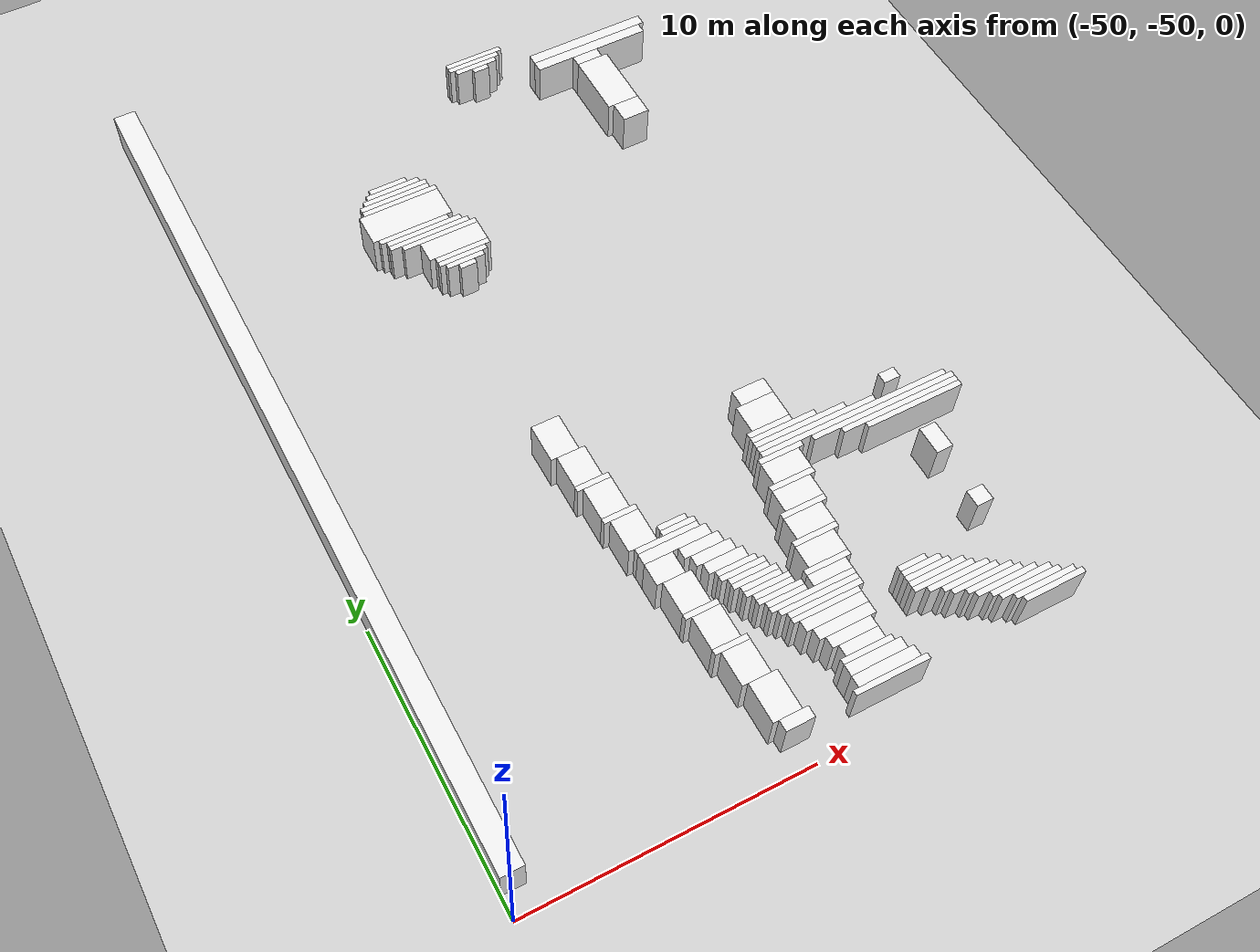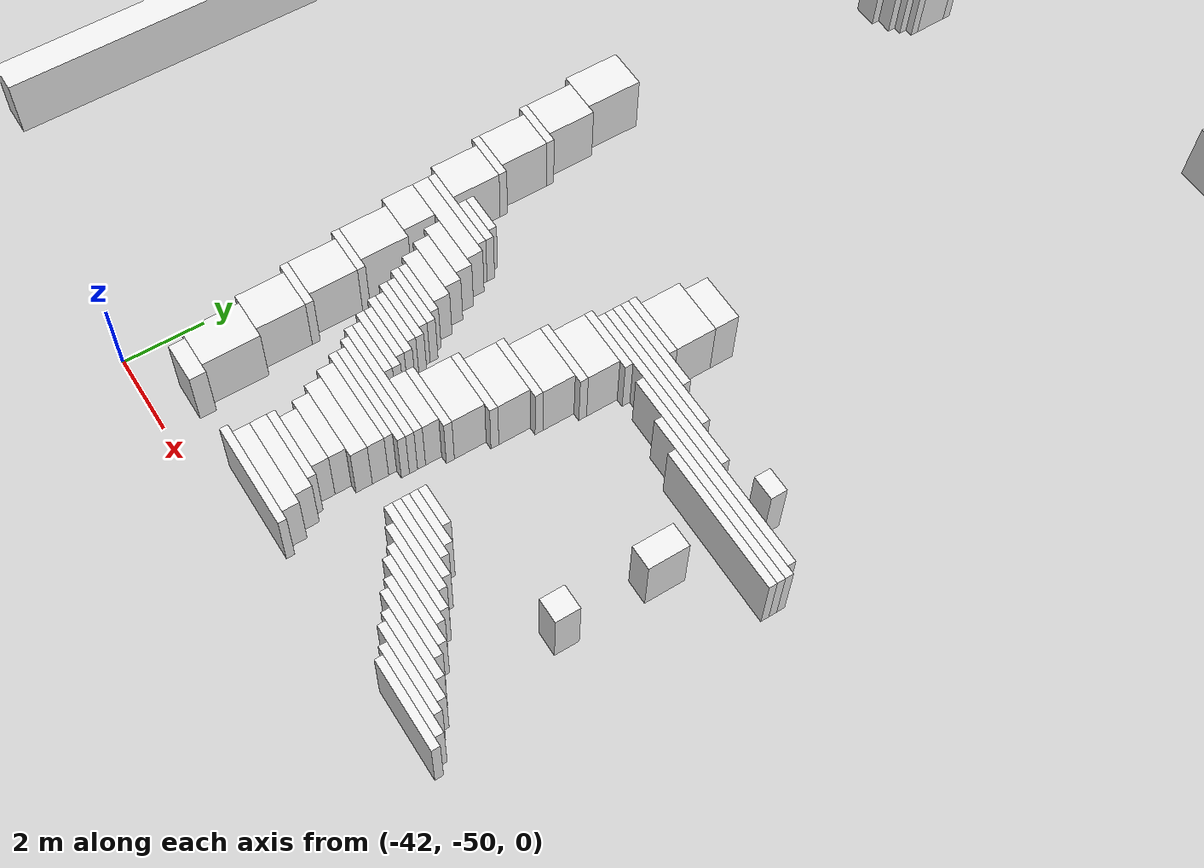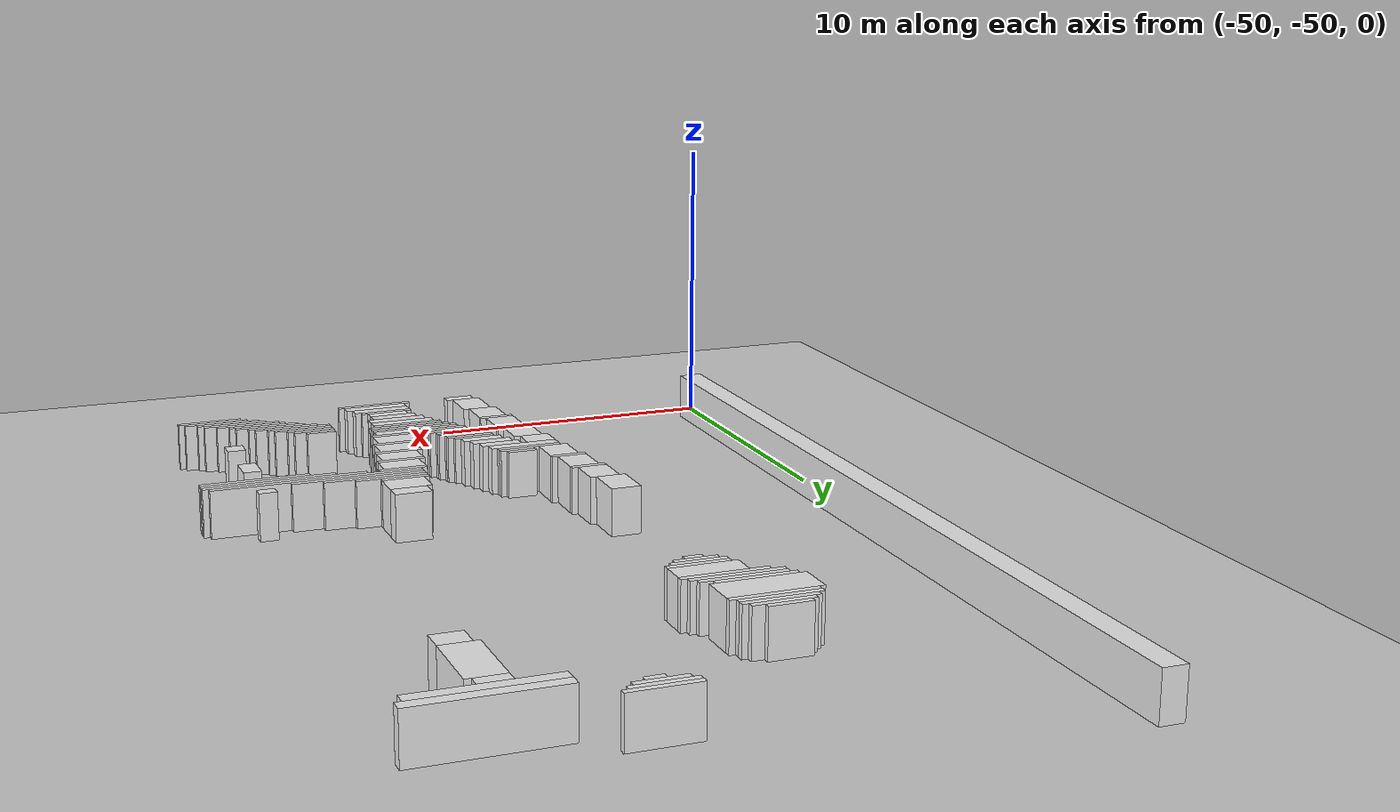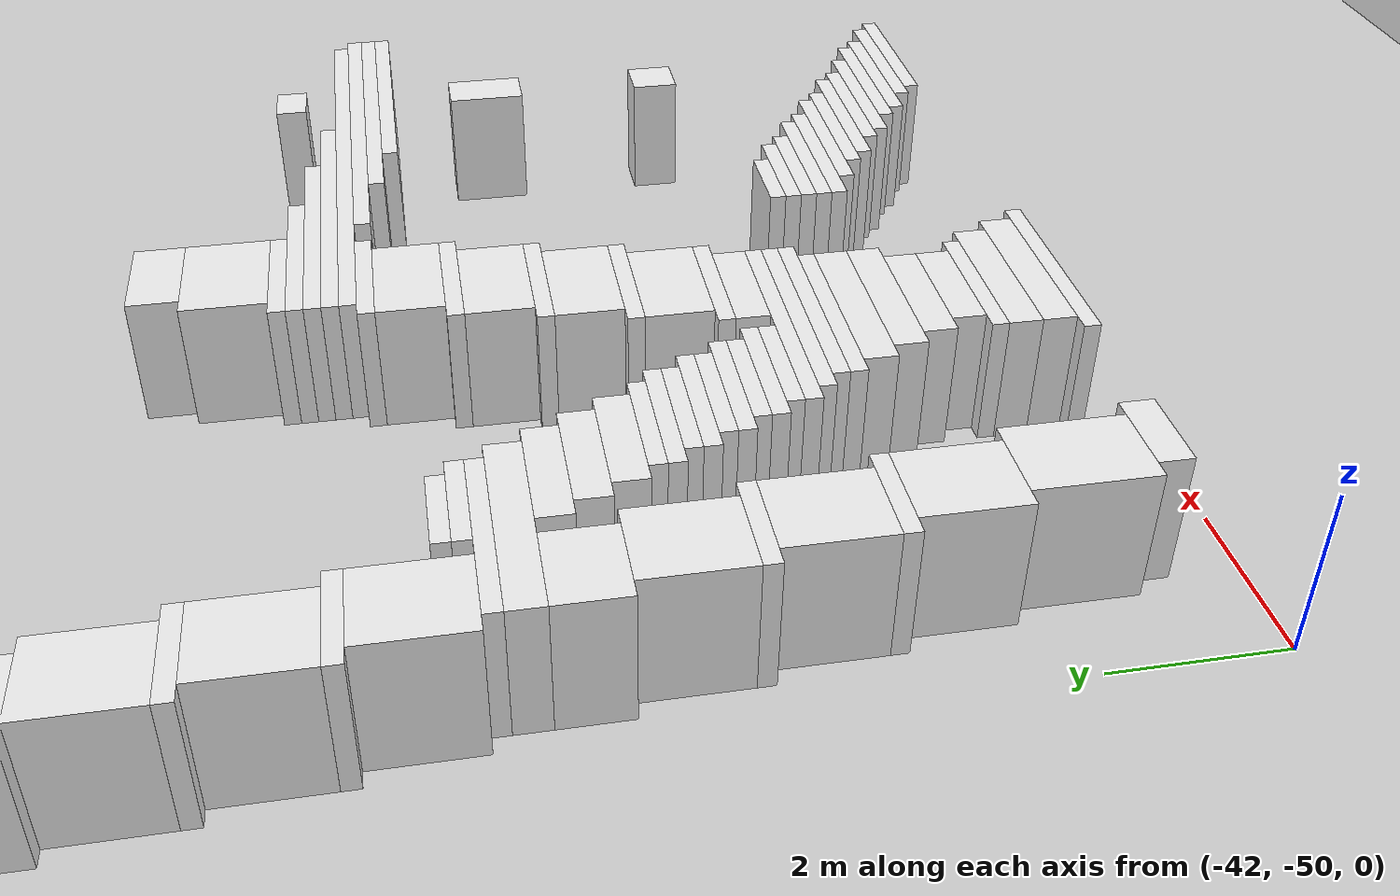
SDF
<sdf version="1.7">
 <world name="default">
  <model name="ground_plane">
   <static>1</static>
   <link name="link">
    <collision name="collision">
     <geometry><plane><normal>0 0 1</normal><size>120 120</size></plane></geometry>
    </collision>
    <visual name="visual">
     <geometry><plane><normal>0 0 1</normal><size>120 120</size></plane></geometry>
     <material>
      <script><uri>file://media/materials/scripts/gazebo.material</uri><name>Gazebo/Grey</name></script>
     </material>
    </visual>
   </link>
  </model>
  <model name="random_complex_02_model">
   <static>1</static>
   <link name="obs_2808">
    <pose>-37.1000 -21.1000 0.8000 0 0 0</pose>
    <collision name="obs_2808_col"><geometry><box><size>2.2000 0.2000 1.6000</size></box></geometry></collision>
    <visual name="obs_2808_vis">
     <geometry><box><size>2.2000 0.2000 1.6000</size></box></geometry>
     <material>
      <script><uri>file://media/materials/scripts/gazebo.material</uri><name>Gazebo/White</name></script>
     </material>
    </visual>
   </link>
   <link name="obs_2814">
    <pose>-37.2000 -21.3000 0.8000 0 0 0</pose>
    <collision name="obs_2814_col"><geometry><box><size>2.0000 0.2000 1.6000</size></box></geometry></collision>
    <visual name="obs_2814_vis">
     <geometry><box><size>2.0000 0.2000 1.6000</size></box></geometry>
     <material>
      <script><uri>file://media/materials/scripts/gazebo.material</uri><name>Gazebo/White</name></script>
     </material>
    </visual>
   </link>
   <link name="obs_2820">
    <pose>-37.2000 -21.5000 0.8000 0 0 0</pose>
    <collision name="obs_2820_col"><geometry><box><size>1.6000 0.2000 1.6000</size></box></geometry></collision>
    <visual name="obs_2820_vis">
     <geometry><box><size>1.6000 0.2000 1.6000</size></box></geometry>
     <material>
      <script><uri>file://media/materials/scripts/gazebo.material</uri><name>Gazebo/White</name></script>
     </material>
    </visual>
   </link>
   <link name="obs_2827">
    <pose>-37.1000 -21.7000 0.8000 0 0 0</pose>
    <collision name="obs_2827_col"><geometry><box><size>0.6000 0.2000 1.6000</size></box></geometry></collision>
    <visual name="obs_2827_vis">
     <geometry><box><size>0.6000 0.2000 1.6000</size></box></geometry>
     <material>
      <script><uri>file://media/materials/scripts/gazebo.material</uri><name>Gazebo/White</name></script>
     </material>
    </visual>
   </link>
   <link name="obs_2847">
    <pose>-32.9000 -22.2000 0.8000 0 0 0</pose>
    <collision name="obs_2847_col"><geometry><box><size>4.6000 0.4000 1.6000</size></box></geometry></collision>
    <visual name="obs_2847_vis">
     <geometry><box><size>4.6000 0.4000 1.6000</size></box></geometry>
     <material>
      <script><uri>file://media/materials/scripts/gazebo.material</uri><name>Gazebo/White</name></script>
     </material>
    </visual>
   </link>
   <link name="obs_2858">
    <pose>-33.0000 -22.6000 0.8000 0 0 0</pose>
    <collision name="obs_2858_col"><geometry><box><size>4.4000 0.4000 1.6000</size></box></geometry></collision>
    <visual name="obs_2858_vis">
     <geometry><box><size>4.4000 0.4000 1.6000</size></box></geometry>
     <material>
      <script><uri>file://media/materials/scripts/gazebo.material</uri><name>Gazebo/White</name></script>
     </material>
    </visual>
   </link>
   <link name="obs_2875">
    <pose>-33.3000 -23.0000 0.8000 0 0 0</pose>
    <collision name="obs_2875_col"><geometry><box><size>1.0000 0.4000 1.6000</size></box></geometry></collision>
    <visual name="obs_2875_vis">
     <geometry><box><size>1.0000 0.4000 1.6000</size></box></geometry>
     <material>
      <script><uri>file://media/materials/scripts/gazebo.material</uri><name>Gazebo/White</name></script>
     </material>
    </visual>
   </link>
   <link name="obs_2960">
    <pose>-42.5000 -25.3000 0.8000 0 0 0</pose>
    <collision name="obs_2960_col"><geometry><box><size>1.4000 0.2000 1.6000</size></box></geometry></collision>
    <visual name="obs_2960_vis">
     <geometry><box><size>1.4000 0.2000 1.6000</size></box></geometry>
     <material>
      <script><uri>file://media/materials/scripts/gazebo.material</uri><name>Gazebo/White</name></script>
     </material>
    </visual>
   </link>
   <link name="obs_2964">
    <pose>-33.2000 -24.4000 0.8000 0 0 0</pose>
    <collision name="obs_2964_col"><geometry><box><size>1.2000 2.4000 1.6000</size></box></geometry></collision>
    <visual name="obs_2964_vis">
     <geometry><box><size>1.2000 2.4000 1.6000</size></box></geometry>
     <material>
      <script><uri>file://media/materials/scripts/gazebo.material</uri><name>Gazebo/White</name></script>
     </material>
    </visual>
   </link>
   <link name="obs_2967">
    <pose>-42.4000 -25.5000 0.8000 0 0 0</pose>
    <collision name="obs_2967_col"><geometry><box><size>2.0000 0.2000 1.6000</size></box></geometry></collision>
    <visual name="obs_2967_vis">
     <geometry><box><size>2.0000 0.2000 1.6000</size></box></geometry>
     <material>
      <script><uri>file://media/materials/scripts/gazebo.material</uri><name>Gazebo/White</name></script>
     </material>
    </visual>
   </link>
   <link name="obs_2973">
    <pose>-42.4000 -25.7000 0.8000 0 0 0</pose>
    <collision name="obs_2973_col"><geometry><box><size>2.4000 0.2000 1.6000</size></box></geometry></collision>
    <visual name="obs_2973_vis">
     <geometry><box><size>2.4000 0.2000 1.6000</size></box></geometry>
     <material>
      <script><uri>file://media/materials/scripts/gazebo.material</uri><name>Gazebo/White</name></script>
     </material>
    </visual>
   </link>
   <link name="obs_2979">
    <pose>-42.5000 -25.9000 0.8000 0 0 0</pose>
    <collision name="obs_2979_col"><geometry><box><size>2.6000 0.2000 1.6000</size></box></geometry></collision>
    <visual name="obs_2979_vis">
     <geometry><box><size>2.6000 0.2000 1.6000</size></box></geometry>
     <material>
      <script><uri>file://media/materials/scripts/gazebo.material</uri><name>Gazebo/White</name></script>
     </material>
    </visual>
   </link>
   <link name="obs_2984">
    <pose>-42.4000 -26.1000 0.8000 0 0 0</pose>
    <collision name="obs_2984_col"><geometry><box><size>2.8000 0.2000 1.6000</size></box></geometry></collision>
    <visual name="obs_2984_vis">
     <geometry><box><size>2.8000 0.2000 1.6000</size></box></geometry>
     <material>
      <script><uri>file://media/materials/scripts/gazebo.material</uri><name>Gazebo/White</name></script>
     </material>
    </visual>
   </link>
   <link name="obs_2990">
    <pose>-33.1000 -26.0000 0.8000 0 0 0</pose>
    <collision name="obs_2990_col"><geometry><box><size>1.0000 0.8000 1.6000</size></box></geometry></collision>
    <visual name="obs_2990_vis">
     <geometry><box><size>1.0000 0.8000 1.6000</size></box></geometry>
     <material>
      <script><uri>file://media/materials/scripts/gazebo.material</uri><name>Gazebo/White</name></script>
     </material>
    </visual>
   </link>
   <link name="obs_3011">
    <pose>-42.5000 -26.8000 0.8000 0 0 0</pose>
    <collision name="obs_3011_col"><geometry><box><size>3.0000 1.2000 1.6000</size></box></geometry></collision>
    <visual name="obs_3011_vis">
     <geometry><box><size>3.0000 1.2000 1.6000</size></box></geometry>
     <material>
      <script><uri>file://media/materials/scripts/gazebo.material</uri><name>Gazebo/White</name></script>
     </material>
    </visual>
   </link>
   <link name="obs_3016">
    <pose>-42.5000 -27.5000 0.8000 0 0 0</pose>
    <collision name="obs_3016_col"><geometry><box><size>2.6000 0.2000 1.6000</size></box></geometry></collision>
    <visual name="obs_3016_vis">
     <geometry><box><size>2.6000 0.2000 1.6000</size></box></geometry>
     <material>
      <script><uri>file://media/materials/scripts/gazebo.material</uri><name>Gazebo/White</name></script>
     </material>
    </visual>
   </link>
   <link name="obs_3019">
    <pose>-42.2000 -27.7000 0.8000 0 0 0</pose>
    <collision name="obs_3019_col"><geometry><box><size>2.8000 0.2000 1.6000</size></box></geometry></collision>
    <visual name="obs_3019_vis">
     <geometry><box><size>2.8000 0.2000 1.6000</size></box></geometry>
     <material>
      <script><uri>file://media/materials/scripts/gazebo.material</uri><name>Gazebo/White</name></script>
     </material>
    </visual>
   </link>
   <link name="obs_3023">
    <pose>-42.1000 -27.9000 0.8000 0 0 0</pose>
    <collision name="obs_3023_col"><geometry><box><size>3.0000 0.2000 1.6000</size></box></geometry></collision>
    <visual name="obs_3023_vis">
     <geometry><box><size>3.0000 0.2000 1.6000</size></box></geometry>
     <material>
      <script><uri>file://media/materials/scripts/gazebo.material</uri><name>Gazebo/White</name></script>
     </material>
    </visual>
   </link>
   <link name="obs_3026">
    <pose>-41.8000 -28.1000 0.8000 0 0 0</pose>
    <collision name="obs_3026_col"><geometry><box><size>2.8000 0.2000 1.6000</size></box></geometry></collision>
    <visual name="obs_3026_vis">
     <geometry><box><size>2.8000 0.2000 1.6000</size></box></geometry>
     <material>
      <script><uri>file://media/materials/scripts/gazebo.material</uri><name>Gazebo/White</name></script>
     </material>
    </visual>
   </link>
   <link name="obs_3046">
    <pose>-41.5000 -28.6000 0.8000 0 0 0</pose>
    <collision name="obs_3046_col"><geometry><box><size>2.2000 0.8000 1.6000</size></box></geometry></collision>
    <visual name="obs_3046_vis">
     <geometry><box><size>2.2000 0.8000 1.6000</size></box></geometry>
     <material>
      <script><uri>file://media/materials/scripts/gazebo.material</uri><name>Gazebo/White</name></script>
     </material>
    </visual>
   </link>
   <link name="obs_3052">
    <pose>-41.4000 -29.1000 0.8000 0 0 0</pose>
    <collision name="obs_3052_col"><geometry><box><size>2.0000 0.2000 1.6000</size></box></geometry></collision>
    <visual name="obs_3052_vis">
     <geometry><box><size>2.0000 0.2000 1.6000</size></box></geometry>
     <material>
      <script><uri>file://media/materials/scripts/gazebo.material</uri><name>Gazebo/White</name></script>
     </material>
    </visual>
   </link>
   <link name="obs_3058">
    <pose>-41.5000 -29.3000 0.8000 0 0 0</pose>
    <collision name="obs_3058_col"><geometry><box><size>1.8000 0.2000 1.6000</size></box></geometry></collision>
    <visual name="obs_3058_vis">
     <geometry><box><size>1.8000 0.2000 1.6000</size></box></geometry>
     <material>
      <script><uri>file://media/materials/scripts/gazebo.material</uri><name>Gazebo/White</name></script>
     </material>
    </visual>
   </link>
   <link name="obs_3064">
    <pose>-41.5000 -29.5000 0.8000 0 0 0</pose>
    <collision name="obs_3064_col"><geometry><box><size>1.4000 0.2000 1.6000</size></box></geometry></collision>
    <visual name="obs_3064_vis">
     <geometry><box><size>1.4000 0.2000 1.6000</size></box></geometry>
     <material>
      <script><uri>file://media/materials/scripts/gazebo.material</uri><name>Gazebo/White</name></script>
     </material>
    </visual>
   </link>
   <link name="obs_3072">
    <pose>-41.5000 -29.7000 0.8000 0 0 0</pose>
    <collision name="obs_3072_col"><geometry><box><size>0.6000 0.2000 1.6000</size></box></geometry></collision>
    <visual name="obs_3072_vis">
     <geometry><box><size>0.6000 0.2000 1.6000</size></box></geometry>
     <material>
      <script><uri>file://media/materials/scripts/gazebo.material</uri><name>Gazebo/White</name></script>
     </material>
    </visual>
   </link>
   <link name="obs_3251">
    <pose>-42.1000 -37.3000 0.8000 0 0 0</pose>
    <collision name="obs_3251_col"><geometry><box><size>1.0000 1.4000 1.6000</size></box></geometry></collision>
    <visual name="obs_3251_vis">
     <geometry><box><size>1.0000 1.4000 1.6000</size></box></geometry>
     <material>
      <script><uri>file://media/materials/scripts/gazebo.material</uri><name>Gazebo/White</name></script>
     </material>
    </visual>
   </link>
   <link name="obs_3280">
    <pose>-35.6000 -38.7000 0.8000 0 0 0</pose>
    <collision name="obs_3280_col"><geometry><box><size>1.2000 0.6000 1.6000</size></box></geometry></collision>
    <visual name="obs_3280_vis">
     <geometry><box><size>1.2000 0.6000 1.6000</size></box></geometry>
     <material>
      <script><uri>file://media/materials/scripts/gazebo.material</uri><name>Gazebo/White</name></script>
     </material>
    </visual>
   </link>
   <link name="obs_3289">
    <pose>-41.9000 -38.6000 0.8000 0 0 0</pose>
    <collision name="obs_3289_col"><geometry><box><size>1.0000 1.2000 1.6000</size></box></geometry></collision>
    <visual name="obs_3289_vis">
     <geometry><box><size>1.0000 1.2000 1.6000</size></box></geometry>
     <material>
      <script><uri>file://media/materials/scripts/gazebo.material</uri><name>Gazebo/White</name></script>
     </material>
    </visual>
   </link>
   <link name="obs_3294">
    <pose>-41.8000 -39.3000 0.8000 0 0 0</pose>
    <collision name="obs_3294_col"><geometry><box><size>1.2000 0.2000 1.6000</size></box></geometry></collision>
    <visual name="obs_3294_vis">
     <geometry><box><size>1.2000 0.2000 1.6000</size></box></geometry>
     <material>
      <script><uri>file://media/materials/scripts/gazebo.material</uri><name>Gazebo/White</name></script>
     </material>
    </visual>
   </link>
   <link name="obs_3306">
    <pose>-35.7000 -39.5000 0.8000 0 0 0</pose>
    <collision name="obs_3306_col"><geometry><box><size>1.4000 1.0000 1.6000</size></box></geometry></collision>
    <visual name="obs_3306_vis">
     <geometry><box><size>1.4000 1.0000 1.6000</size></box></geometry>
     <material>
      <script><uri>file://media/materials/scripts/gazebo.material</uri><name>Gazebo/White</name></script>
     </material>
    </visual>
   </link>
   <link name="obs_3313">
    <pose>-35.8000 -40.1000 0.8000 0 0 0</pose>
    <collision name="obs_3313_col"><geometry><box><size>1.6000 0.2000 1.6000</size></box></geometry></collision>
    <visual name="obs_3313_vis">
     <geometry><box><size>1.6000 0.2000 1.6000</size></box></geometry>
     <material>
      <script><uri>file://media/materials/scripts/gazebo.material</uri><name>Gazebo/White</name></script>
     </material>
    </visual>
   </link>
   <link name="obs_3316">
    <pose>-31.3000 -40.2000 0.8000 0 0 0</pose>
    <collision name="obs_3316_col"><geometry><box><size>0.6000 0.4000 1.6000</size></box></geometry></collision>
    <visual name="obs_3316_vis">
     <geometry><box><size>0.6000 0.4000 1.6000</size></box></geometry>
     <material>
      <script><uri>file://media/materials/scripts/gazebo.material</uri><name>Gazebo/White</name></script>
     </material>
    </visual>
   </link>
   <link name="obs_3317">
    <pose>-35.4000 -40.3000 0.8000 0 0 0</pose>
    <collision name="obs_3317_col"><geometry><box><size>2.4000 0.2000 1.6000</size></box></geometry></collision>
    <visual name="obs_3317_vis">
     <geometry><box><size>2.4000 0.2000 1.6000</size></box></geometry>
     <material>
      <script><uri>file://media/materials/scripts/gazebo.material</uri><name>Gazebo/White</name></script>
     </material>
    </visual>
   </link>
   <link name="obs_3322">
    <pose>-41.7000 -40.0000 0.8000 0 0 0</pose>
    <collision name="obs_3322_col"><geometry><box><size>1.0000 1.2000 1.6000</size></box></geometry></collision>
    <visual name="obs_3322_vis">
     <geometry><box><size>1.0000 1.2000 1.6000</size></box></geometry>
     <material>
      <script><uri>file://media/materials/scripts/gazebo.material</uri><name>Gazebo/White</name></script>
     </material>
    </visual>
   </link>
   <link name="obs_3324">
    <pose>-34.9000 -40.5000 0.8000 0 0 0</pose>
    <collision name="obs_3324_col"><geometry><box><size>3.4000 0.2000 1.6000</size></box></geometry></collision>
    <visual name="obs_3324_vis">
     <geometry><box><size>3.4000 0.2000 1.6000</size></box></geometry>
     <material>
      <script><uri>file://media/materials/scripts/gazebo.material</uri><name>Gazebo/White</name></script>
     </material>
    </visual>
   </link>
   <link name="obs_3328">
    <pose>-41.6000 -40.7000 0.8000 0 0 0</pose>
    <collision name="obs_3328_col"><geometry><box><size>1.2000 0.2000 1.6000</size></box></geometry></collision>
    <visual name="obs_3328_vis">
     <geometry><box><size>1.2000 0.2000 1.6000</size></box></geometry>
     <material>
      <script><uri>file://media/materials/scripts/gazebo.material</uri><name>Gazebo/White</name></script>
     </material>
    </visual>
   </link>
   <link name="obs_3329">
    <pose>-34.4000 -40.7000 0.8000 0 0 0</pose>
    <collision name="obs_3329_col"><geometry><box><size>4.4000 0.2000 1.6000</size></box></geometry></collision>
    <visual name="obs_3329_vis">
     <geometry><box><size>4.4000 0.2000 1.6000</size></box></geometry>
     <material>
      <script><uri>file://media/materials/scripts/gazebo.material</uri><name>Gazebo/White</name></script>
     </material>
    </visual>
   </link>
   <link name="obs_3335">
    <pose>-33.1000 -40.9000 0.8000 0 0 0</pose>
    <collision name="obs_3335_col"><geometry><box><size>7.0000 0.2000 1.6000</size></box></geometry></collision>
    <visual name="obs_3335_vis">
     <geometry><box><size>7.0000 0.2000 1.6000</size></box></geometry>
     <material>
      <script><uri>file://media/materials/scripts/gazebo.material</uri><name>Gazebo/White</name></script>
     </material>
    </visual>
   </link>
   <link name="obs_3344">
    <pose>-36.0000 -41.1000 0.8000 0 0 0</pose>
    <collision name="obs_3344_col"><geometry><box><size>1.6000 0.2000 1.6000</size></box></geometry></collision>
    <visual name="obs_3344_vis">
     <geometry><box><size>1.6000 0.2000 1.6000</size></box></geometry>
     <material>
      <script><uri>file://media/materials/scripts/gazebo.material</uri><name>Gazebo/White</name></script>
     </material>
    </visual>
   </link>
   <link name="obs_3345">
    <pose>-32.1000 -41.1000 0.8000 0 0 0</pose>
    <collision name="obs_3345_col"><geometry><box><size>5.4000 0.2000 1.6000</size></box></geometry></collision>
    <visual name="obs_3345_vis">
     <geometry><box><size>5.4000 0.2000 1.6000</size></box></geometry>
     <material>
      <script><uri>file://media/materials/scripts/gazebo.material</uri><name>Gazebo/White</name></script>
     </material>
    </visual>
   </link>
   <link name="obs_3353">
    <pose>-31.6000 -41.3000 0.8000 0 0 0</pose>
    <collision name="obs_3353_col"><geometry><box><size>4.4000 0.2000 1.6000</size></box></geometry></collision>
    <visual name="obs_3353_vis">
     <geometry><box><size>4.4000 0.2000 1.6000</size></box></geometry>
     <material>
      <script><uri>file://media/materials/scripts/gazebo.material</uri><name>Gazebo/White</name></script>
     </material>
    </visual>
   </link>
   <link name="obs_3360">
    <pose>-31.2000 -41.5000 0.8000 0 0 0</pose>
    <collision name="obs_3360_col"><geometry><box><size>3.6000 0.2000 1.6000</size></box></geometry></collision>
    <visual name="obs_3360_vis">
     <geometry><box><size>3.6000 0.2000 1.6000</size></box></geometry>
     <material>
      <script><uri>file://media/materials/scripts/gazebo.material</uri><name>Gazebo/White</name></script>
     </material>
    </visual>
   </link>
   <link name="obs_3369">
    <pose>-40.3000 -41.7000 0.8000 0 0 0</pose>
    <collision name="obs_3369_col"><geometry><box><size>1.0000 0.2000 1.6000</size></box></geometry></collision>
    <visual name="obs_3369_vis">
     <geometry><box><size>1.0000 0.2000 1.6000</size></box></geometry>
     <material>
      <script><uri>file://media/materials/scripts/gazebo.material</uri><name>Gazebo/White</name></script>
     </material>
    </visual>
   </link>
   <link name="obs_3376">
    <pose>-41.5000 -41.4000 0.8000 0 0 0</pose>
    <collision name="obs_3376_col"><geometry><box><size>1.0000 1.2000 1.6000</size></box></geometry></collision>
    <visual name="obs_3376_vis">
     <geometry><box><size>1.0000 1.2000 1.6000</size></box></geometry>
     <material>
      <script><uri>file://media/materials/scripts/gazebo.material</uri><name>Gazebo/White</name></script>
     </material>
    </visual>
   </link>
   <link name="obs_3377">
    <pose>-36.1000 -41.6000 0.8000 0 0 0</pose>
    <collision name="obs_3377_col"><geometry><box><size>1.4000 0.8000 1.6000</size></box></geometry></collision>
    <visual name="obs_3377_vis">
     <geometry><box><size>1.4000 0.8000 1.6000</size></box></geometry>
     <material>
      <script><uri>file://media/materials/scripts/gazebo.material</uri><name>Gazebo/White</name></script>
     </material>
    </visual>
   </link>
   <link name="obs_3378">
    <pose>-40.2000 -41.9000 0.8000 0 0 0</pose>
    <collision name="obs_3378_col"><geometry><box><size>1.2000 0.2000 1.6000</size></box></geometry></collision>
    <visual name="obs_3378_vis">
     <geometry><box><size>1.2000 0.2000 1.6000</size></box></geometry>
     <material>
      <script><uri>file://media/materials/scripts/gazebo.material</uri><name>Gazebo/White</name></script>
     </material>
    </visual>
   </link>
   <link name="obs_3387">
    <pose>-40.7000 -42.1000 0.8000 0 0 0</pose>
    <collision name="obs_3387_col"><geometry><box><size>2.2000 0.2000 1.6000</size></box></geometry></collision>
    <visual name="obs_3387_vis">
     <geometry><box><size>2.2000 0.2000 1.6000</size></box></geometry>
     <material>
      <script><uri>file://media/materials/scripts/gazebo.material</uri><name>Gazebo/White</name></script>
     </material>
    </visual>
   </link>
   <link name="obs_3388">
    <pose>-36.2000 -42.1000 0.8000 0 0 0</pose>
    <collision name="obs_3388_col"><geometry><box><size>1.6000 0.2000 1.6000</size></box></geometry></collision>
    <visual name="obs_3388_vis">
     <geometry><box><size>1.6000 0.2000 1.6000</size></box></geometry>
     <material>
      <script><uri>file://media/materials/scripts/gazebo.material</uri><name>Gazebo/White</name></script>
     </material>
    </visual>
   </link>
   <link name="obs_3403">
    <pose>-40.6000 -42.4000 0.8000 0 0 0</pose>
    <collision name="obs_3403_col"><geometry><box><size>2.4000 0.4000 1.6000</size></box></geometry></collision>
    <visual name="obs_3403_vis">
     <geometry><box><size>2.4000 0.4000 1.6000</size></box></geometry>
     <material>
      <script><uri>file://media/materials/scripts/gazebo.material</uri><name>Gazebo/White</name></script>
     </material>
    </visual>
   </link>
   <link name="obs_3414">
    <pose>-36.3000 -42.6000 0.8000 0 0 0</pose>
    <collision name="obs_3414_col"><geometry><box><size>1.4000 0.8000 1.6000</size></box></geometry></collision>
    <visual name="obs_3414_vis">
     <geometry><box><size>1.4000 0.8000 1.6000</size></box></geometry>
     <material>
      <script><uri>file://media/materials/scripts/gazebo.material</uri><name>Gazebo/White</name></script>
     </material>
    </visual>
   </link>
   <link name="obs_3415">
    <pose>-39.9000 -42.8000 0.8000 0 0 0</pose>
    <collision name="obs_3415_col"><geometry><box><size>1.4000 0.4000 1.6000</size></box></geometry></collision>
    <visual name="obs_3415_vis">
     <geometry><box><size>1.4000 0.4000 1.6000</size></box></geometry>
     <material>
      <script><uri>file://media/materials/scripts/gazebo.material</uri><name>Gazebo/White</name></script>
     </material>
    </visual>
   </link>
   <link name="obs_3422">
    <pose>-36.4000 -43.1000 0.8000 0 0 0</pose>
    <collision name="obs_3422_col"><geometry><box><size>1.6000 0.2000 1.6000</size></box></geometry></collision>
    <visual name="obs_3422_vis">
     <geometry><box><size>1.6000 0.2000 1.6000</size></box></geometry>
     <material>
      <script><uri>file://media/materials/scripts/gazebo.material</uri><name>Gazebo/White</name></script>
     </material>
    </visual>
   </link>
   <link name="obs_3429">
    <pose>-31.3000 -42.9000 0.8000 0 0 0</pose>
    <collision name="obs_3429_col"><geometry><box><size>0.6000 1.0000 1.6000</size></box></geometry></collision>
    <visual name="obs_3429_vis">
     <geometry><box><size>0.6000 1.0000 1.6000</size></box></geometry>
     <material>
      <script><uri>file://media/materials/scripts/gazebo.material</uri><name>Gazebo/White</name></script>
     </material>
    </visual>
   </link>
   <link name="obs_3430">
    <pose>-41.3000 -43.0000 0.8000 0 0 0</pose>
    <collision name="obs_3430_col"><geometry><box><size>1.0000 0.8000 1.6000</size></box></geometry></collision>
    <visual name="obs_3430_vis">
     <geometry><box><size>1.0000 0.8000 1.6000</size></box></geometry>
     <material>
      <script><uri>file://media/materials/scripts/gazebo.material</uri><name>Gazebo/White</name></script>
     </material>
    </visual>
   </link>
   <link name="obs_3431">
    <pose>-39.7000 -43.2000 0.8000 0 0 0</pose>
    <collision name="obs_3431_col"><geometry><box><size>1.4000 0.4000 1.6000</size></box></geometry></collision>
    <visual name="obs_3431_vis">
     <geometry><box><size>1.4000 0.4000 1.6000</size></box></geometry>
     <material>
      <script><uri>file://media/materials/scripts/gazebo.material</uri><name>Gazebo/White</name></script>
     </material>
    </visual>
   </link>
   <link name="obs_3442">
    <pose>-39.5000 -43.6000 0.8000 0 0 0</pose>
    <collision name="obs_3442_col"><geometry><box><size>1.4000 0.4000 1.6000</size></box></geometry></collision>
    <visual name="obs_3442_vis">
     <geometry><box><size>1.4000 0.4000 1.6000</size></box></geometry>
     <material>
      <script><uri>file://media/materials/scripts/gazebo.material</uri><name>Gazebo/White</name></script>
     </material>
    </visual>
   </link>
   <link name="obs_3450">
    <pose>-36.5000 -43.6000 0.8000 0 0 0</pose>
    <collision name="obs_3450_col"><geometry><box><size>1.4000 0.8000 1.6000</size></box></geometry></collision>
    <visual name="obs_3450_vis">
     <geometry><box><size>1.4000 0.8000 1.6000</size></box></geometry>
     <material>
      <script><uri>file://media/materials/scripts/gazebo.material</uri><name>Gazebo/White</name></script>
     </material>
    </visual>
   </link>
   <link name="obs_3452">
    <pose>-39.3000 -43.9000 0.8000 0 0 0</pose>
    <collision name="obs_3452_col"><geometry><box><size>1.4000 0.2000 1.6000</size></box></geometry></collision>
    <visual name="obs_3452_vis">
     <geometry><box><size>1.4000 0.2000 1.6000</size></box></geometry>
     <material>
      <script><uri>file://media/materials/scripts/gazebo.material</uri><name>Gazebo/White</name></script>
     </material>
    </visual>
   </link>
   <link name="obs_3459">
    <pose>-39.2000 -44.1000 0.8000 0 0 0</pose>
    <collision name="obs_3459_col"><geometry><box><size>1.6000 0.2000 1.6000</size></box></geometry></collision>
    <visual name="obs_3459_vis">
     <geometry><box><size>1.6000 0.2000 1.6000</size></box></geometry>
     <material>
      <script><uri>file://media/materials/scripts/gazebo.material</uri><name>Gazebo/White</name></script>
     </material>
    </visual>
   </link>
   <link name="obs_3460">
    <pose>-36.6000 -44.1000 0.8000 0 0 0</pose>
    <collision name="obs_3460_col"><geometry><box><size>1.6000 0.2000 1.6000</size></box></geometry></collision>
    <visual name="obs_3460_vis">
     <geometry><box><size>1.6000 0.2000 1.6000</size></box></geometry>
     <material>
      <script><uri>file://media/materials/scripts/gazebo.material</uri><name>Gazebo/White</name></script>
     </material>
    </visual>
   </link>
   <link name="obs_3470">
    <pose>-39.1000 -44.3000 0.8000 0 0 0</pose>
    <collision name="obs_3470_col"><geometry><box><size>1.4000 0.2000 1.6000</size></box></geometry></collision>
    <visual name="obs_3470_vis">
     <geometry><box><size>1.4000 0.2000 1.6000</size></box></geometry>
     <material>
      <script><uri>file://media/materials/scripts/gazebo.material</uri><name>Gazebo/White</name></script>
     </material>
    </visual>
   </link>
   <link name="obs_3477">
    <pose>-41.1000 -44.0000 0.8000 0 0 0</pose>
    <collision name="obs_3477_col"><geometry><box><size>1.0000 1.2000 1.6000</size></box></geometry></collision>
    <visual name="obs_3477_vis">
     <geometry><box><size>1.0000 1.2000 1.6000</size></box></geometry>
     <material>
      <script><uri>file://media/materials/scripts/gazebo.material</uri><name>Gazebo/White</name></script>
     </material>
    </visual>
   </link>
   <link name="obs_3478">
    <pose>-39.0000 -44.5000 0.8000 0 0 0</pose>
    <collision name="obs_3478_col"><geometry><box><size>1.6000 0.2000 1.6000</size></box></geometry></collision>
    <visual name="obs_3478_vis">
     <geometry><box><size>1.6000 0.2000 1.6000</size></box></geometry>
     <material>
      <script><uri>file://media/materials/scripts/gazebo.material</uri><name>Gazebo/White</name></script>
     </material>
    </visual>
   </link>
   <link name="obs_3484">
    <pose>-41.0000 -44.7000 0.8000 0 0 0</pose>
    <collision name="obs_3484_col"><geometry><box><size>1.2000 0.2000 1.6000</size></box></geometry></collision>
    <visual name="obs_3484_vis">
     <geometry><box><size>1.2000 0.2000 1.6000</size></box></geometry>
     <material>
      <script><uri>file://media/materials/scripts/gazebo.material</uri><name>Gazebo/White</name></script>
     </material>
    </visual>
   </link>
   <link name="obs_3485">
    <pose>-38.9000 -44.7000 0.8000 0 0 0</pose>
    <collision name="obs_3485_col"><geometry><box><size>1.4000 0.2000 1.6000</size></box></geometry></collision>
    <visual name="obs_3485_vis">
     <geometry><box><size>1.4000 0.2000 1.6000</size></box></geometry>
     <material>
      <script><uri>file://media/materials/scripts/gazebo.material</uri><name>Gazebo/White</name></script>
     </material>
    </visual>
   </link>
   <link name="obs_3492">
    <pose>-36.7000 -44.6000 0.8000 0 0 0</pose>
    <collision name="obs_3492_col"><geometry><box><size>1.4000 0.8000 1.6000</size></box></geometry></collision>
    <visual name="obs_3492_vis">
     <geometry><box><size>1.4000 0.8000 1.6000</size></box></geometry>
     <material>
      <script><uri>file://media/materials/scripts/gazebo.material</uri><name>Gazebo/White</name></script>
     </material>
    </visual>
   </link>
   <link name="obs_3494">
    <pose>-38.8000 -44.9000 0.8000 0 0 0</pose>
    <collision name="obs_3494_col"><geometry><box><size>1.6000 0.2000 1.6000</size></box></geometry></collision>
    <visual name="obs_3494_vis">
     <geometry><box><size>1.6000 0.2000 1.6000</size></box></geometry>
     <material>
      <script><uri>file://media/materials/scripts/gazebo.material</uri><name>Gazebo/White</name></script>
     </material>
    </visual>
   </link>
   <link name="obs_3503">
    <pose>-38.7000 -45.1000 0.8000 0 0 0</pose>
    <collision name="obs_3503_col"><geometry><box><size>1.4000 0.2000 1.6000</size></box></geometry></collision>
    <visual name="obs_3503_vis">
     <geometry><box><size>1.4000 0.2000 1.6000</size></box></geometry>
     <material>
      <script><uri>file://media/materials/scripts/gazebo.material</uri><name>Gazebo/White</name></script>
     </material>
    </visual>
   </link>
   <link name="obs_3504">
    <pose>-36.8000 -45.1000 0.8000 0 0 0</pose>
    <collision name="obs_3504_col"><geometry><box><size>1.6000 0.2000 1.6000</size></box></geometry></collision>
    <visual name="obs_3504_vis">
     <geometry><box><size>1.6000 0.2000 1.6000</size></box></geometry>
     <material>
      <script><uri>file://media/materials/scripts/gazebo.material</uri><name>Gazebo/White</name></script>
     </material>
    </visual>
   </link>
   <link name="obs_3514">
    <pose>-38.6000 -45.3000 0.8000 0 0 0</pose>
    <collision name="obs_3514_col"><geometry><box><size>1.6000 0.2000 1.6000</size></box></geometry></collision>
    <visual name="obs_3514_vis">
     <geometry><box><size>1.6000 0.2000 1.6000</size></box></geometry>
     <material>
      <script><uri>file://media/materials/scripts/gazebo.material</uri><name>Gazebo/White</name></script>
     </material>
    </visual>
   </link>
   <link name="obs_3524">
    <pose>-31.3000 -45.3000 0.8000 0 0 0</pose>
    <collision name="obs_3524_col"><geometry><box><size>0.6000 0.6000 1.6000</size></box></geometry></collision>
    <visual name="obs_3524_vis">
     <geometry><box><size>0.6000 0.6000 1.6000</size></box></geometry>
     <material>
      <script><uri>file://media/materials/scripts/gazebo.material</uri><name>Gazebo/White</name></script>
     </material>
    </visual>
   </link>
   <link name="obs_3525">
    <pose>-36.9000 -45.4000 0.8000 0 0 0</pose>
    <collision name="obs_3525_col"><geometry><box><size>1.4000 0.4000 1.6000</size></box></geometry></collision>
    <visual name="obs_3525_vis">
     <geometry><box><size>1.4000 0.4000 1.6000</size></box></geometry>
     <material>
      <script><uri>file://media/materials/scripts/gazebo.material</uri><name>Gazebo/White</name></script>
     </material>
    </visual>
   </link>
   <link name="obs_3526">
    <pose>-38.5000 -45.5000 0.8000 0 0 0</pose>
    <collision name="obs_3526_col"><geometry><box><size>1.4000 0.2000 1.6000</size></box></geometry></collision>
    <visual name="obs_3526_vis">
     <geometry><box><size>1.4000 0.2000 1.6000</size></box></geometry>
     <material>
      <script><uri>file://media/materials/scripts/gazebo.material</uri><name>Gazebo/White</name></script>
     </material>
    </visual>
   </link>
   <link name="obs_3537">
    <pose>-37.7000 -45.7000 0.8000 0 0 0</pose>
    <collision name="obs_3537_col"><geometry><box><size>3.0000 0.2000 1.6000</size></box></geometry></collision>
    <visual name="obs_3537_vis">
     <geometry><box><size>3.0000 0.2000 1.6000</size></box></geometry>
     <material>
      <script><uri>file://media/materials/scripts/gazebo.material</uri><name>Gazebo/White</name></script>
     </material>
    </visual>
   </link>
   <link name="obs_3544">
    <pose>-40.9000 -45.4000 0.8000 0 0 0</pose>
    <collision name="obs_3544_col"><geometry><box><size>1.0000 1.2000 1.6000</size></box></geometry></collision>
    <visual name="obs_3544_vis">
     <geometry><box><size>1.0000 1.2000 1.6000</size></box></geometry>
     <material>
      <script><uri>file://media/materials/scripts/gazebo.material</uri><name>Gazebo/White</name></script>
     </material>
    </visual>
   </link>
   <link name="obs_3546">
    <pose>-37.6000 -45.9000 0.8000 0 0 0</pose>
    <collision name="obs_3546_col"><geometry><box><size>2.8000 0.2000 1.6000</size></box></geometry></collision>
    <visual name="obs_3546_vis">
     <geometry><box><size>2.8000 0.2000 1.6000</size></box></geometry>
     <material>
      <script><uri>file://media/materials/scripts/gazebo.material</uri><name>Gazebo/White</name></script>
     </material>
    </visual>
   </link>
   <link name="obs_3552">
    <pose>-40.8000 -46.1000 0.8000 0 0 0</pose>
    <collision name="obs_3552_col"><geometry><box><size>1.2000 0.2000 1.6000</size></box></geometry></collision>
    <visual name="obs_3552_vis">
     <geometry><box><size>1.2000 0.2000 1.6000</size></box></geometry>
     <material>
      <script><uri>file://media/materials/scripts/gazebo.material</uri><name>Gazebo/White</name></script>
     </material>
    </visual>
   </link>
   <link name="obs_3553">
    <pose>-37.5000 -46.1000 0.8000 0 0 0</pose>
    <collision name="obs_3553_col"><geometry><box><size>2.6000 0.2000 1.6000</size></box></geometry></collision>
    <visual name="obs_3553_vis">
     <geometry><box><size>2.6000 0.2000 1.6000</size></box></geometry>
     <material>
      <script><uri>file://media/materials/scripts/gazebo.material</uri><name>Gazebo/White</name></script>
     </material>
    </visual>
   </link>
   <link name="obs_3562">
    <pose>-37.6000 -46.3000 0.8000 0 0 0</pose>
    <collision name="obs_3562_col"><geometry><box><size>2.4000 0.2000 1.6000</size></box></geometry></collision>
    <visual name="obs_3562_vis">
     <geometry><box><size>2.4000 0.2000 1.6000</size></box></geometry>
     <material>
      <script><uri>file://media/materials/scripts/gazebo.material</uri><name>Gazebo/White</name></script>
     </material>
    </visual>
   </link>
   <link name="obs_3563">
    <pose>-34.5000 -46.3000 0.8000 0 0 0</pose>
    <collision name="obs_3563_col"><geometry><box><size>1.0000 0.2000 1.6000</size></box></geometry></collision>
    <visual name="obs_3563_vis">
     <geometry><box><size>1.0000 0.2000 1.6000</size></box></geometry>
     <material>
      <script><uri>file://media/materials/scripts/gazebo.material</uri><name>Gazebo/White</name></script>
     </material>
    </visual>
   </link>
   <link name="obs_3569">
    <pose>-34.3000 -46.5000 0.8000 0 0 0</pose>
    <collision name="obs_3569_col"><geometry><box><size>1.4000 0.2000 1.6000</size></box></geometry></collision>
    <visual name="obs_3569_vis">
     <geometry><box><size>1.4000 0.2000 1.6000</size></box></geometry>
     <material>
      <script><uri>file://media/materials/scripts/gazebo.material</uri><name>Gazebo/White</name></script>
     </material>
    </visual>
   </link>
   <link name="obs_3576">
    <pose>-37.5000 -46.6000 0.8000 0 0 0</pose>
    <collision name="obs_3576_col"><geometry><box><size>2.2000 0.4000 1.6000</size></box></geometry></collision>
    <visual name="obs_3576_vis">
     <geometry><box><size>2.2000 0.4000 1.6000</size></box></geometry>
     <material>
      <script><uri>file://media/materials/scripts/gazebo.material</uri><name>Gazebo/White</name></script>
     </material>
    </visual>
   </link>
   <link name="obs_3578">
    <pose>-34.2000 -46.7000 0.8000 0 0 0</pose>
    <collision name="obs_3578_col"><geometry><box><size>1.6000 0.2000 1.6000</size></box></geometry></collision>
    <visual name="obs_3578_vis">
     <geometry><box><size>1.6000 0.2000 1.6000</size></box></geometry>
     <material>
      <script><uri>file://media/materials/scripts/gazebo.material</uri><name>Gazebo/White</name></script>
     </material>
    </visual>
   </link>
   <link name="obs_3586">
    <pose>-34.0000 -46.9000 0.8000 0 0 0</pose>
    <collision name="obs_3586_col"><geometry><box><size>2.0000 0.2000 1.6000</size></box></geometry></collision>
    <visual name="obs_3586_vis">
     <geometry><box><size>2.0000 0.2000 1.6000</size></box></geometry>
     <material>
      <script><uri>file://media/materials/scripts/gazebo.material</uri><name>Gazebo/White</name></script>
     </material>
    </visual>
   </link>
   <link name="obs_3594">
    <pose>-37.4000 -47.0000 0.8000 0 0 0</pose>
    <collision name="obs_3594_col"><geometry><box><size>2.0000 0.4000 1.6000</size></box></geometry></collision>
    <visual name="obs_3594_vis">
     <geometry><box><size>2.0000 0.4000 1.6000</size></box></geometry>
     <material>
      <script><uri>file://media/materials/scripts/gazebo.material</uri><name>Gazebo/White</name></script>
     </material>
    </visual>
   </link>
   <link name="obs_3596">
    <pose>-33.9000 -47.1000 0.8000 0 0 0</pose>
    <collision name="obs_3596_col"><geometry><box><size>2.2000 0.2000 1.6000</size></box></geometry></collision>
    <visual name="obs_3596_vis">
     <geometry><box><size>2.2000 0.2000 1.6000</size></box></geometry>
     <material>
      <script><uri>file://media/materials/scripts/gazebo.material</uri><name>Gazebo/White</name></script>
     </material>
    </visual>
   </link>
   <link name="obs_3605">
    <pose>-40.7000 -46.8000 0.8000 0 0 0</pose>
    <collision name="obs_3605_col"><geometry><box><size>1.0000 1.2000 1.6000</size></box></geometry></collision>
    <visual name="obs_3605_vis">
     <geometry><box><size>1.0000 1.2000 1.6000</size></box></geometry>
     <material>
      <script><uri>file://media/materials/scripts/gazebo.material</uri><name>Gazebo/White</name></script>
     </material>
    </visual>
   </link>
   <link name="obs_3606">
    <pose>-33.5000 -47.3000 0.8000 0 0 0</pose>
    <collision name="obs_3606_col"><geometry><box><size>2.2000 0.2000 1.6000</size></box></geometry></collision>
    <visual name="obs_3606_vis">
     <geometry><box><size>2.2000 0.2000 1.6000</size></box></geometry>
     <material>
      <script><uri>file://media/materials/scripts/gazebo.material</uri><name>Gazebo/White</name></script>
     </material>
    </visual>
   </link>
   <link name="obs_3614">
    <pose>-37.4000 -47.4000 0.8000 0 0 0</pose>
    <collision name="obs_3614_col"><geometry><box><size>1.6000 0.4000 1.6000</size></box></geometry></collision>
    <visual name="obs_3614_vis">
     <geometry><box><size>1.6000 0.4000 1.6000</size></box></geometry>
     <material>
      <script><uri>file://media/materials/scripts/gazebo.material</uri><name>Gazebo/White</name></script>
     </material>
    </visual>
   </link>
   <link name="obs_3616">
    <pose>-33.2000 -47.5000 0.8000 0 0 0</pose>
    <collision name="obs_3616_col"><geometry><box><size>2.0000 0.2000 1.6000</size></box></geometry></collision>
    <visual name="obs_3616_vis">
     <geometry><box><size>2.0000 0.2000 1.6000</size></box></geometry>
     <material>
      <script><uri>file://media/materials/scripts/gazebo.material</uri><name>Gazebo/White</name></script>
     </material>
    </visual>
   </link>
   <link name="obs_3623">
    <pose>-32.9000 -47.7000 0.8000 0 0 0</pose>
    <collision name="obs_3623_col"><geometry><box><size>2.2000 0.2000 1.6000</size></box></geometry></collision>
    <visual name="obs_3623_vis">
     <geometry><box><size>2.2000 0.2000 1.6000</size></box></geometry>
     <material>
      <script><uri>file://media/materials/scripts/gazebo.material</uri><name>Gazebo/White</name></script>
     </material>
    </visual>
   </link>
   <link name="obs_3626">
    <pose>-37.3000 -47.8000 0.8000 0 0 0</pose>
    <collision name="obs_3626_col"><geometry><box><size>1.4000 0.4000 1.6000</size></box></geometry></collision>
    <visual name="obs_3626_vis">
     <geometry><box><size>1.4000 0.4000 1.6000</size></box></geometry>
     <material>
      <script><uri>file://media/materials/scripts/gazebo.material</uri><name>Gazebo/White</name></script>
     </material>
    </visual>
   </link>
   <link name="obs_3627">
    <pose>-32.6000 -47.9000 0.8000 0 0 0</pose>
    <collision name="obs_3627_col"><geometry><box><size>2.0000 0.2000 1.6000</size></box></geometry></collision>
    <visual name="obs_3627_vis">
     <geometry><box><size>2.0000 0.2000 1.6000</size></box></geometry>
     <material>
      <script><uri>file://media/materials/scripts/gazebo.material</uri><name>Gazebo/White</name></script>
     </material>
    </visual>
   </link>
   <link name="obs_3633">
    <pose>-37.3000 -48.1000 0.8000 0 0 0</pose>
    <collision name="obs_3633_col"><geometry><box><size>1.8000 0.2000 1.6000</size></box></geometry></collision>
    <visual name="obs_3633_vis">
     <geometry><box><size>1.8000 0.2000 1.6000</size></box></geometry>
     <material>
      <script><uri>file://media/materials/scripts/gazebo.material</uri><name>Gazebo/White</name></script>
     </material>
    </visual>
   </link>
   <link name="obs_3634">
    <pose>-32.3000 -48.1000 0.8000 0 0 0</pose>
    <collision name="obs_3634_col"><geometry><box><size>2.2000 0.2000 1.6000</size></box></geometry></collision>
    <visual name="obs_3634_vis">
     <geometry><box><size>2.2000 0.2000 1.6000</size></box></geometry>
     <material>
      <script><uri>file://media/materials/scripts/gazebo.material</uri><name>Gazebo/White</name></script>
     </material>
    </visual>
   </link>
   <link name="obs_3639">
    <pose>-31.9000 -48.3000 0.8000 0 0 0</pose>
    <collision name="obs_3639_col"><geometry><box><size>2.2000 0.2000 1.6000</size></box></geometry></collision>
    <visual name="obs_3639_vis">
     <geometry><box><size>2.2000 0.2000 1.6000</size></box></geometry>
     <material>
      <script><uri>file://media/materials/scripts/gazebo.material</uri><name>Gazebo/White</name></script>
     </material>
    </visual>
   </link>
   <link name="obs_3646">
    <pose>-37.2000 -48.4000 0.8000 0 0 0</pose>
    <collision name="obs_3646_col"><geometry><box><size>2.0000 0.4000 1.6000</size></box></geometry></collision>
    <visual name="obs_3646_vis">
     <geometry><box><size>2.0000 0.4000 1.6000</size></box></geometry>
     <material>
      <script><uri>file://media/materials/scripts/gazebo.material</uri><name>Gazebo/White</name></script>
     </material>
    </visual>
   </link>
   <link name="obs_3647">
    <pose>-31.7000 -48.5000 0.8000 0 0 0</pose>
    <collision name="obs_3647_col"><geometry><box><size>2.2000 0.2000 1.6000</size></box></geometry></collision>
    <visual name="obs_3647_vis">
     <geometry><box><size>2.2000 0.2000 1.6000</size></box></geometry>
     <material>
      <script><uri>file://media/materials/scripts/gazebo.material</uri><name>Gazebo/White</name></script>
     </material>
    </visual>
   </link>
   <link name="obs_3650">
    <pose>-40.5000 -48.1000 0.8000 0 0 0</pose>
    <collision name="obs_3650_col"><geometry><box><size>1.0000 1.4000 1.6000</size></box></geometry></collision>
    <visual name="obs_3650_vis">
     <geometry><box><size>1.0000 1.4000 1.6000</size></box></geometry>
     <material>
      <script><uri>file://media/materials/scripts/gazebo.material</uri><name>Gazebo/White</name></script>
     </material>
    </visual>
   </link>
   <link name="obs_3653">
    <pose>-31.3000 -48.7000 0.8000 0 0 0</pose>
    <collision name="obs_3653_col"><geometry><box><size>2.2000 0.2000 1.6000</size></box></geometry></collision>
    <visual name="obs_3653_vis">
     <geometry><box><size>2.2000 0.2000 1.6000</size></box></geometry>
     <material>
      <script><uri>file://media/materials/scripts/gazebo.material</uri><name>Gazebo/White</name></script>
     </material>
    </visual>
   </link>
   <link name="obs_3657">
    <pose>-37.1000 -48.8000 0.8000 0 0 0</pose>
    <collision name="obs_3657_col"><geometry><box><size>2.2000 0.4000 1.6000</size></box></geometry></collision>
    <visual name="obs_3657_vis">
     <geometry><box><size>2.2000 0.4000 1.6000</size></box></geometry>
     <material>
      <script><uri>file://media/materials/scripts/gazebo.material</uri><name>Gazebo/White</name></script>
     </material>
    </visual>
   </link>
   <link name="obs_3659">
    <pose>-31.1000 -48.9000 0.8000 0 0 0</pose>
    <collision name="obs_3659_col"><geometry><box><size>2.2000 0.2000 1.6000</size></box></geometry></collision>
    <visual name="obs_3659_vis">
     <geometry><box><size>2.2000 0.2000 1.6000</size></box></geometry>
     <material>
      <script><uri>file://media/materials/scripts/gazebo.material</uri><name>Gazebo/White</name></script>
     </material>
    </visual>
   </link>
   <link name="obs_3664">
    <pose>-49.6000 -33.5000 0.8000 0 0 0</pose>
    <collision name="obs_3664_col"><geometry><box><size>0.8000 31.4000 1.6000</size></box></geometry></collision>
    <visual name="obs_3664_vis">
     <geometry><box><size>0.8000 31.4000 1.6000</size></box></geometry>
     <material>
      <script><uri>file://media/materials/scripts/gazebo.material</uri><name>Gazebo/White</name></script>
     </material>
    </visual>
   </link>
   <link name="obs_3666">
    <pose>-40.3000 -49.0000 0.8000 0 0 0</pose>
    <collision name="obs_3666_col"><geometry><box><size>1.0000 0.4000 1.6000</size></box></geometry></collision>
    <visual name="obs_3666_vis">
     <geometry><box><size>1.0000 0.4000 1.6000</size></box></geometry>
     <material>
      <script><uri>file://media/materials/scripts/gazebo.material</uri><name>Gazebo/White</name></script>
     </material>
    </visual>
   </link>
   <link name="obs_3667">
    <pose>-37.1000 -49.1000 0.8000 0 0 0</pose>
    <collision name="obs_3667_col"><geometry><box><size>2.6000 0.2000 1.6000</size></box></geometry></collision>
    <visual name="obs_3667_vis">
     <geometry><box><size>2.6000 0.2000 1.6000</size></box></geometry>
     <material>
      <script><uri>file://media/materials/scripts/gazebo.material</uri><name>Gazebo/White</name></script>
     </material>
    </visual>
   </link>
  </model>
 </world>
</sdf>
